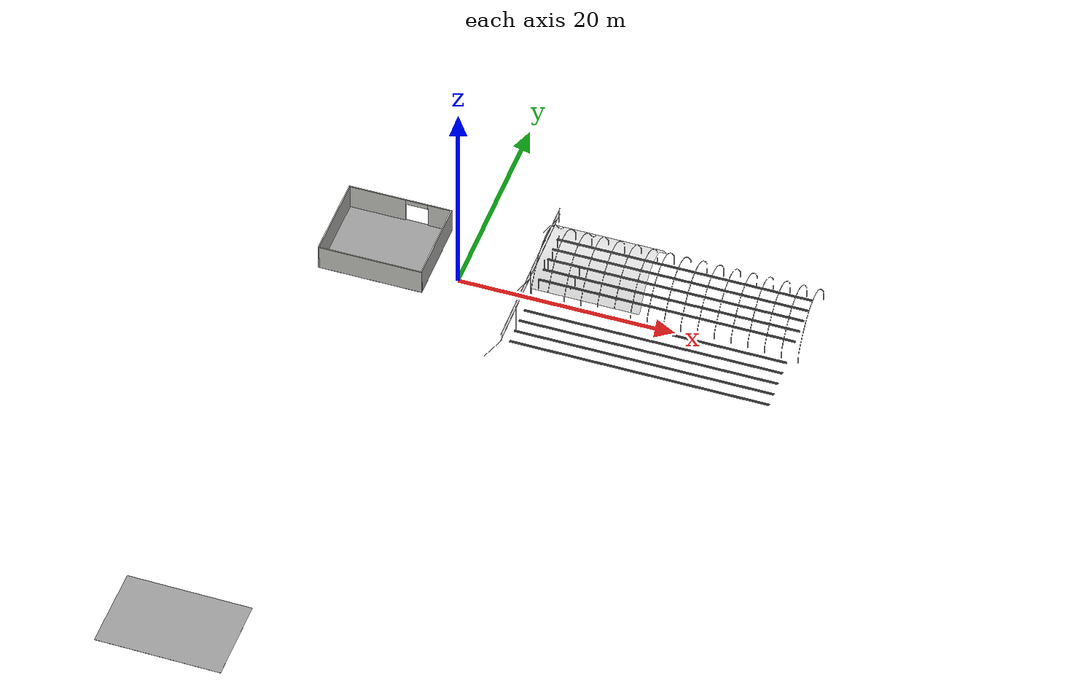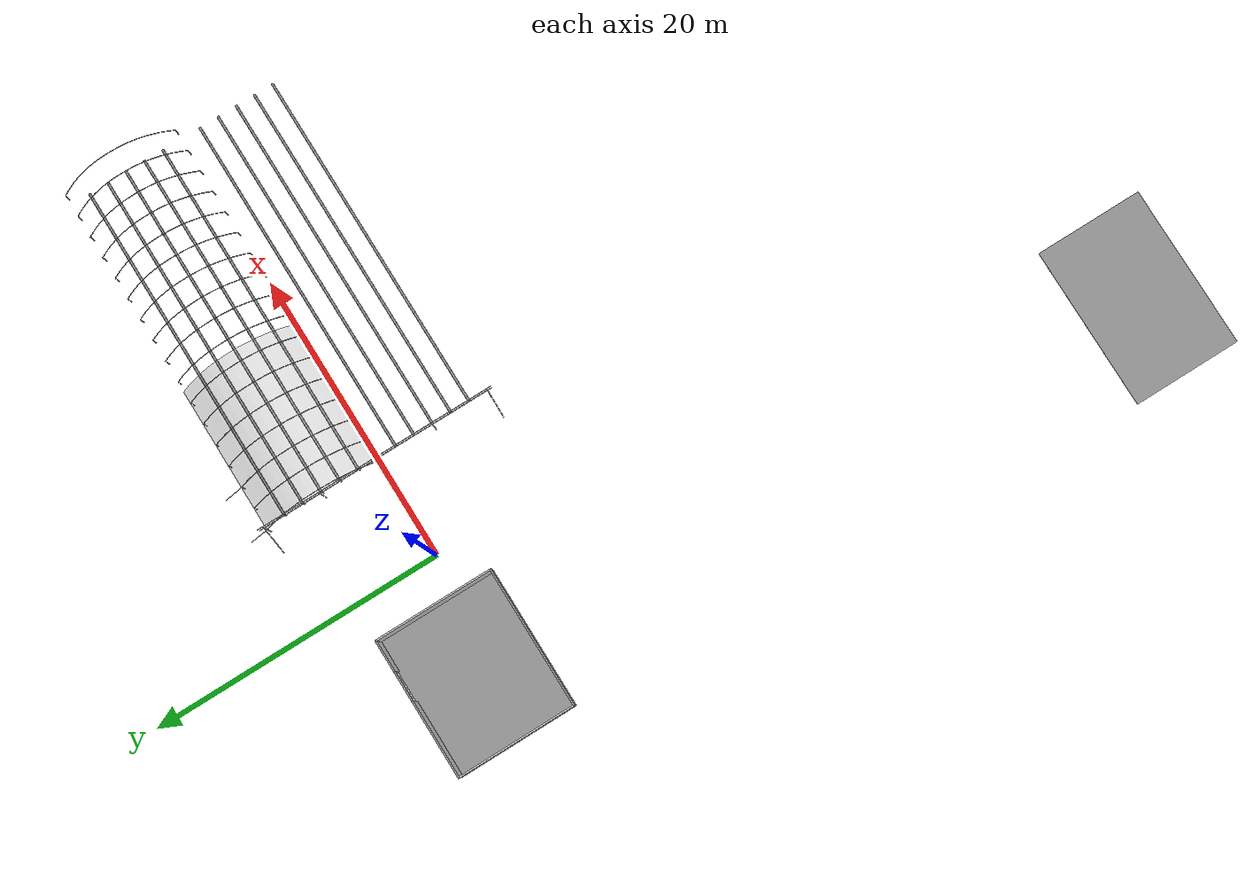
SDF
<sdf version="1.4">
 <world name="default">
  <model name="tray_0">
   <static>1</static>
   <link name="link_0">
    <collision name="collision"><geometry><box><size>23.620 0.15 0.005</size></box></geometry></collision>
    <visual name="visual">
     <geometry><box><size>23.620 0.15 0.005</size></box></geometry>
     <material>
      <script><uri>file://media/materials/scripts/gazebo.material</uri><name>Gazebo/Grey</name></script>
      <emissive>0 0 0 1</emissive>
      <shader type="vertex"><normal_map>__default__</normal_map></shader>
      <specular>0.01 0.01 0.01 1</specular>
      <lighting>1</lighting>
      <ambient>0.7 0.7 0.7 1</ambient>
      <diffuse>0.3 0.3 0.3 1</diffuse>
     </material>
    </visual>
    <pose>18.760 -6.640 1.14965 0.0 0.0 0.0</pose>
   </link>
  </model>
  <model name="tray_1">
   <static>1</static>
   <link name="link_0">
    <collision name="collision"><geometry><box><size>23.620 0.15 0.005</size></box></geometry></collision>
    <visual name="visual">
     <geometry><box><size>23.620 0.15 0.005</size></box></geometry>
     <material>
      <script><uri>file://media/materials/scripts/gazebo.material</uri><name>Gazebo/Grey</name></script>
      <emissive>0 0 0 1</emissive>
      <shader type="vertex"><normal_map>__default__</normal_map></shader>
      <specular>0.01 0.01 0.01 1</specular>
      <lighting>1</lighting>
      <ambient>0.7 0.7 0.7 1</ambient>
      <diffuse>0.3 0.3 0.3 1</diffuse>
     </material>
    </visual>
    <pose>18.760 -5.320 1.14965 0.0 0.0 0.0</pose>
   </link>
  </model>
  <model name="tray_2">
   <static>1</static>
   <link name="link_0">
    <collision name="collision"><geometry><box><size>23.620 0.15 0.005</size></box></geometry></collision>
    <visual name="visual">
     <geometry><box><size>23.620 0.15 0.005</size></box></geometry>
     <material>
      <script><uri>file://media/materials/scripts/gazebo.material</uri><name>Gazebo/Grey</name></script>
      <emissive>0 0 0 1</emissive>
      <shader type="vertex"><normal_map>__default__</normal_map></shader>
      <specular>0.01 0.01 0.01 1</specular>
      <lighting>1</lighting>
      <ambient>0.7 0.7 0.7 1</ambient>
      <diffuse>0.3 0.3 0.3 1</diffuse>
     </material>
    </visual>
    <pose>18.760 -4.000 1.14965 0.0 0.0 0.0</pose>
   </link>
  </model>
  <model name="tray_3">
   <static>1</static>
   <link name="link_0">
    <collision name="collision"><geometry><box><size>23.620 0.15 0.005</size></box></geometry></collision>
    <visual name="visual">
     <geometry><box><size>23.620 0.15 0.005</size></box></geometry>
     <material>
      <script><uri>file://media/materials/scripts/gazebo.material</uri><name>Gazebo/Grey</name></script>
      <emissive>0 0 0 1</emissive>
      <shader type="vertex"><normal_map>__default__</normal_map></shader>
      <specular>0.01 0.01 0.01 1</specular>
      <lighting>1</lighting>
      <ambient>0.7 0.7 0.7 1</ambient>
      <diffuse>0.3 0.3 0.3 1</diffuse>
     </material>
    </visual>
    <pose>18.760 -2.680 1.14965 0.0 0.0 0.0</pose>
   </link>
  </model>
  <model name="tray_4">
   <static>1</static>
   <link name="link_0">
    <collision name="collision"><geometry><box><size>23.620 0.15 0.005</size></box></geometry></collision>
    <visual name="visual">
     <geometry><box><size>23.620 0.15 0.005</size></box></geometry>
     <material>
      <script><uri>file://media/materials/scripts/gazebo.material</uri><name>Gazebo/Grey</name></script>
      <emissive>0 0 0 1</emissive>
      <shader type="vertex"><normal_map>__default__</normal_map></shader>
      <specular>0.01 0.01 0.01 1</specular>
      <lighting>1</lighting>
      <ambient>0.7 0.7 0.7 1</ambient>
      <diffuse>0.3 0.3 0.3 1</diffuse>
     </material>
    </visual>
    <pose>18.760 -1.360 1.14965 0.0 0.0 0.0</pose>
   </link>
  </model>
  <model name="tray_p2_0">
   <static>1</static>
   <link name="link_0">
    <collision name="collision"><geometry><box><size>23.62 0.085 0.005</size></box></geometry></collision>
    <visual name="visual">
     <geometry><box><size>23.62 0.085 0.005</size></box></geometry>
     <material>
      <script><uri>file://media/materials/scripts/gazebo.material</uri><name>Gazebo/Grey</name></script>
      <emissive>0 0 0 1</emissive>
      <shader type="vertex"><normal_map>__default__</normal_map></shader>
      <specular>0.01 0.01 0.01 1</specular>
      <lighting>1</lighting>
      <ambient>0.7 0.7 0.7 1</ambient>
      <diffuse>0.3 0.3 0.3 1</diffuse>
     </material>
    </visual>
    <pose>18.760 -6.715 1.19165 1.5707 0.0 0.0</pose>
   </link>
  </model>
  <model name="tray_p2_1">
   <static>1</static>
   <link name="link_0">
    <collision name="collision"><geometry><box><size>23.62 0.085 0.005</size></box></geometry></collision>
    <visual name="visual">
     <geometry><box><size>23.62 0.085 0.005</size></box></geometry>
     <material>
      <script><uri>file://media/materials/scripts/gazebo.material</uri><name>Gazebo/Grey</name></script>
      <emissive>0 0 0 1</emissive>
      <shader type="vertex"><normal_map>__default__</normal_map></shader>
      <specular>0.01 0.01 0.01 1</specular>
      <lighting>1</lighting>
      <ambient>0.7 0.7 0.7 1</ambient>
      <diffuse>0.3 0.3 0.3 1</diffuse>
     </material>
    </visual>
    <pose>18.760 -5.395 1.19165 1.5707 0.0 0.0</pose>
   </link>
  </model>
  <model name="tray_p2_2">
   <static>1</static>
   <link name="link_0">
    <collision name="collision"><geometry><box><size>23.62 0.085 0.005</size></box></geometry></collision>
    <visual name="visual">
     <geometry><box><size>23.62 0.085 0.005</size></box></geometry>
     <material>
      <script><uri>file://media/materials/scripts/gazebo.material</uri><name>Gazebo/Grey</name></script>
      <emissive>0 0 0 1</emissive>
      <shader type="vertex"><normal_map>__default__</normal_map></shader>
      <specular>0.01 0.01 0.01 1</specular>
      <lighting>1</lighting>
      <ambient>0.7 0.7 0.7 1</ambient>
      <diffuse>0.3 0.3 0.3 1</diffuse>
     </material>
    </visual>
    <pose>18.760 -4.075 1.19165 1.5707 0.0 0.0</pose>
   </link>
  </model>
  <model name="tray_p2_3">
   <static>1</static>
   <link name="link_0">
    <collision name="collision"><geometry><box><size>23.62 0.085 0.005</size></box></geometry></collision>
    <visual name="visual">
     <geometry><box><size>23.62 0.085 0.005</size></box></geometry>
     <material>
      <script><uri>file://media/materials/scripts/gazebo.material</uri><name>Gazebo/Grey</name></script>
      <emissive>0 0 0 1</emissive>
      <shader type="vertex"><normal_map>__default__</normal_map></shader>
      <specular>0.01 0.01 0.01 1</specular>
      <lighting>1</lighting>
      <ambient>0.7 0.7 0.7 1</ambient>
      <diffuse>0.3 0.3 0.3 1</diffuse>
     </material>
    </visual>
    <pose>18.760 -2.755 1.19165 1.5707 0.0 0.0</pose>
   </link>
  </model>
  <model name="tray_p2_4">
   <static>1</static>
   <link name="link_0">
    <collision name="collision"><geometry><box><size>23.62 0.085 0.005</size></box></geometry></collision>
    <visual name="visual">
     <geometry><box><size>23.62 0.085 0.005</size></box></geometry>
     <material>
      <script><uri>file://media/materials/scripts/gazebo.material</uri><name>Gazebo/Grey</name></script>
      <emissive>0 0 0 1</emissive>
      <shader type="vertex"><normal_map>__default__</normal_map></shader>
      <specular>0.01 0.01 0.01 1</specular>
      <lighting>1</lighting>
      <ambient>0.7 0.7 0.7 1</ambient>
      <diffuse>0.3 0.3 0.3 1</diffuse>
     </material>
    </visual>
    <pose>18.760 -1.435 1.19165 1.5707 0.0 0.0</pose>
   </link>
  </model>
  <model name="tray_p2_5">
   <static>1</static>
   <link name="link_0">
    <collision name="collision"><geometry><box><size>23.62 0.085 0.005</size></box></geometry></collision>
    <visual name="visual">
     <geometry><box><size>23.62 0.085 0.005</size></box></geometry>
     <material>
      <script><uri>file://media/materials/scripts/gazebo.material</uri><name>Gazebo/Grey</name></script>
      <emissive>0 0 0 1</emissive>
      <shader type="vertex"><normal_map>__default__</normal_map></shader>
      <specular>0.01 0.01 0.01 1</specular>
      <lighting>1</lighting>
      <ambient>0.7 0.7 0.7 1</ambient>
      <diffuse>0.3 0.3 0.3 1</diffuse>
     </material>
    </visual>
    <pose>18.760 -6.565 1.19165 1.5707 0.0 0.0</pose>
   </link>
  </model>
  <model name="tray_p2_6">
   <static>1</static>
   <link name="link_0">
    <collision name="collision"><geometry><box><size>23.62 0.085 0.005</size></box></geometry></collision>
    <visual name="visual">
     <geometry><box><size>23.62 0.085 0.005</size></box></geometry>
     <material>
      <script><uri>file://media/materials/scripts/gazebo.material</uri><name>Gazebo/Grey</name></script>
      <emissive>0 0 0 1</emissive>
      <shader type="vertex"><normal_map>__default__</normal_map></shader>
      <specular>0.01 0.01 0.01 1</specular>
      <lighting>1</lighting>
      <ambient>0.7 0.7 0.7 1</ambient>
      <diffuse>0.3 0.3 0.3 1</diffuse>
     </material>
    </visual>
    <pose>18.760 -5.245 1.19165 1.5707 0.0 0.0</pose>
   </link>
  </model>
  <model name="tray_p2_7">
   <static>1</static>
   <link name="link_0">
    <collision name="collision"><geometry><box><size>23.62 0.085 0.005</size></box></geometry></collision>
    <visual name="visual">
     <geometry><box><size>23.62 0.085 0.005</size></box></geometry>
     <material>
      <script><uri>file://media/materials/scripts/gazebo.material</uri><name>Gazebo/Grey</name></script>
      <emissive>0 0 0 1</emissive>
      <shader type="vertex"><normal_map>__default__</normal_map></shader>
      <specular>0.01 0.01 0.01 1</specular>
      <lighting>1</lighting>
      <ambient>0.7 0.7 0.7 1</ambient>
      <diffuse>0.3 0.3 0.3 1</diffuse>
     </material>
    </visual>
    <pose>18.760 -3.925 1.19165 1.5707 0.0 0.0</pose>
   </link>
  </model>
  <model name="tray_p2_8">
   <static>1</static>
   <link name="link_0">
    <collision name="collision"><geometry><box><size>23.62 0.085 0.005</size></box></geometry></collision>
    <visual name="visual">
     <geometry><box><size>23.62 0.085 0.005</size></box></geometry>
     <material>
      <script><uri>file://media/materials/scripts/gazebo.material</uri><name>Gazebo/Grey</name></script>
      <emissive>0 0 0 1</emissive>
      <shader type="vertex"><normal_map>__default__</normal_map></shader>
      <specular>0.01 0.01 0.01 1</specular>
      <lighting>1</lighting>
      <ambient>0.7 0.7 0.7 1</ambient>
      <diffuse>0.3 0.3 0.3 1</diffuse>
     </material>
    </visual>
    <pose>18.760 -2.605 1.19165 1.5707 0.0 0.0</pose>
   </link>
  </model>
  <model name="tray_p2_9">
   <static>1</static>
   <link name="link_0">
    <collision name="collision"><geometry><box><size>23.62 0.085 0.005</size></box></geometry></collision>
    <visual name="visual">
     <geometry><box><size>23.62 0.085 0.005</size></box></geometry>
     <material>
      <script><uri>file://media/materials/scripts/gazebo.material</uri><name>Gazebo/Grey</name></script>
      <emissive>0 0 0 1</emissive>
      <shader type="vertex"><normal_map>__default__</normal_map></shader>
      <specular>0.01 0.01 0.01 1</specular>
      <lighting>1</lighting>
      <ambient>0.7 0.7 0.7 1</ambient>
      <diffuse>0.3 0.3 0.3 1</diffuse>
     </material>
    </visual>
    <pose>18.760 -1.285 1.19165 1.5707 0.0 0.0</pose>
   </link>
  </model>
  <model name="pole_45">
   <static>1</static>
   <pose>7.000 1.320 0.575 0.0 0.0 0.0</pose>
   <link name="link">
    <collision name="collision">
     <geometry><cylinder><length>1.15</length><radius>0.025</radius></cylinder></geometry>
    </collision>
    <visual name="visual">
     <geometry><cylinder><length>1.15</length><radius>0.025</radius></cylinder></geometry>
     <material>
      <script><uri>file://media/materials/scripts/gazebo.material</uri><name>Gazebo/Chrome</name></script>
      <shader type="vertex"><normal_map>__default__</normal_map></shader>
      <emissive>0.1 0.1 0.1 1</emissive>
      <specular>0.01 0.01 0.01 1</specular>
      <ambient>0.5 0.5 0.5 1</ambient>
      <diffuse>0.05 0.05 0.05 1</diffuse>
     </material>
    </visual>
   </link>
  </model>
  <model name="pole_46">
   <static>1</static>
   <pose>7.000 2.640 0.575 0.0 0.0 0.0</pose>
   <link name="link">
    <collision name="collision">
     <geometry><cylinder><length>1.15</length><radius>0.025</radius></cylinder></geometry>
    </collision>
    <visual name="visual">
     <geometry><cylinder><length>1.15</length><radius>0.025</radius></cylinder></geometry>
     <material>
      <script><uri>file://media/materials/scripts/gazebo.material</uri><name>Gazebo/Chrome</name></script>
      <shader type="vertex"><normal_map>__default__</normal_map></shader>
      <emissive>0.1 0.1 0.1 1</emissive>
      <specular>0.01 0.01 0.01 1</specular>
      <ambient>0.5 0.5 0.5 1</ambient>
      <diffuse>0.05 0.05 0.05 1</diffuse>
     </material>
    </visual>
   </link>
  </model>
  <model name="pole_47">
   <static>1</static>
   <pose>7.000 3.960 0.575 0.0 0.0 0.0</pose>
   <link name="link">
    <collision name="collision">
     <geometry><cylinder><length>1.15</length><radius>0.025</radius></cylinder></geometry>
    </collision>
    <visual name="visual">
     <geometry><cylinder><length>1.15</length><radius>0.025</radius></cylinder></geometry>
     <material>
      <script><uri>file://media/materials/scripts/gazebo.material</uri><name>Gazebo/Chrome</name></script>
      <shader type="vertex"><normal_map>__default__</normal_map></shader>
      <emissive>0.1 0.1 0.1 1</emissive>
      <specular>0.01 0.01 0.01 1</specular>
      <ambient>0.5 0.5 0.5 1</ambient>
      <diffuse>0.05 0.05 0.05 1</diffuse>
     </material>
    </visual>
   </link>
  </model>
  <model name="pole_48">
   <static>1</static>
   <pose>7.000 5.280 0.575 0.0 0.0 0.0</pose>
   <link name="link">
    <collision name="collision">
     <geometry><cylinder><length>1.15</length><radius>0.025</radius></cylinder></geometry>
    </collision>
    <visual name="visual">
     <geometry><cylinder><length>1.15</length><radius>0.025</radius></cylinder></geometry>
     <material>
      <script><uri>file://media/materials/scripts/gazebo.material</uri><name>Gazebo/Chrome</name></script>
      <shader type="vertex"><normal_map>__default__</normal_map></shader>
      <emissive>0.1 0.1 0.1 1</emissive>
      <specular>0.01 0.01 0.01 1</specular>
      <ambient>0.5 0.5 0.5 1</ambient>
      <diffuse>0.05 0.05 0.05 1</diffuse>
     </material>
    </visual>
   </link>
  </model>
  <model name="pole_49">
   <static>1</static>
   <pose>7.000 6.600 0.575 0.0 0.0 0.0</pose>
   <link name="link">
    <collision name="collision">
     <geometry><cylinder><length>1.15</length><radius>0.025</radius></cylinder></geometry>
    </collision>
    <visual name="visual">
     <geometry><cylinder><length>1.15</length><radius>0.025</radius></cylinder></geometry>
     <material>
      <script><uri>file://media/materials/scripts/gazebo.material</uri><name>Gazebo/Chrome</name></script>
      <shader type="vertex"><normal_map>__default__</normal_map></shader>
      <emissive>0.1 0.1 0.1 1</emissive>
      <specular>0.01 0.01 0.01 1</specular>
      <ambient>0.5 0.5 0.5 1</ambient>
      <diffuse>0.05 0.05 0.05 1</diffuse>
     </material>
    </visual>
   </link>
  </model>
  <model name="pole_50">
   <static>1</static>
   <pose>9.940 1.320 0.575 0.0 0.0 0.0</pose>
   <link name="link">
    <collision name="collision">
     <geometry><cylinder><length>1.15</length><radius>0.025</radius></cylinder></geometry>
    </collision>
    <visual name="visual">
     <geometry><cylinder><length>1.15</length><radius>0.025</radius></cylinder></geometry>
     <material>
      <script><uri>file://media/materials/scripts/gazebo.material</uri><name>Gazebo/Chrome</name></script>
      <shader type="vertex"><normal_map>__default__</normal_map></shader>
      <emissive>0.1 0.1 0.1 1</emissive>
      <specular>0.01 0.01 0.01 1</specular>
      <ambient>0.5 0.5 0.5 1</ambient>
      <diffuse>0.05 0.05 0.05 1</diffuse>
     </material>
    </visual>
   </link>
  </model>
  <model name="pole_51">
   <static>1</static>
   <pose>9.940 2.640 0.575 0.0 0.0 0.0</pose>
   <link name="link">
    <collision name="collision">
     <geometry><cylinder><length>1.15</length><radius>0.025</radius></cylinder></geometry>
    </collision>
    <visual name="visual">
     <geometry><cylinder><length>1.15</length><radius>0.025</radius></cylinder></geometry>
     <material>
      <script><uri>file://media/materials/scripts/gazebo.material</uri><name>Gazebo/Chrome</name></script>
      <shader type="vertex"><normal_map>__default__</normal_map></shader>
      <emissive>0.1 0.1 0.1 1</emissive>
      <specular>0.01 0.01 0.01 1</specular>
      <ambient>0.5 0.5 0.5 1</ambient>
      <diffuse>0.05 0.05 0.05 1</diffuse>
     </material>
    </visual>
   </link>
  </model>
  <model name="pole_52">
   <static>1</static>
   <pose>9.940 3.960 0.575 0.0 0.0 0.0</pose>
   <link name="link">
    <collision name="collision">
     <geometry><cylinder><length>1.15</length><radius>0.025</radius></cylinder></geometry>
    </collision>
    <visual name="visual">
     <geometry><cylinder><length>1.15</length><radius>0.025</radius></cylinder></geometry>
     <material>
      <script><uri>file://media/materials/scripts/gazebo.material</uri><name>Gazebo/Chrome</name></script>
      <shader type="vertex"><normal_map>__default__</normal_map></shader>
      <emissive>0.1 0.1 0.1 1</emissive>
      <specular>0.01 0.01 0.01 1</specular>
      <ambient>0.5 0.5 0.5 1</ambient>
      <diffuse>0.05 0.05 0.05 1</diffuse>
     </material>
    </visual>
   </link>
  </model>
  <model name="tray_5">
   <static>1</static>
   <link name="link_0">
    <collision name="collision"><geometry><box><size>23.620 0.15 0.005</size></box></geometry></collision>
    <visual name="visual">
     <geometry><box><size>23.620 0.15 0.005</size></box></geometry>
     <material>
      <script><uri>file://media/materials/scripts/gazebo.material</uri><name>Gazebo/Grey</name></script>
      <emissive>0 0 0 1</emissive>
      <shader type="vertex"><normal_map>__default__</normal_map></shader>
      <specular>0.01 0.01 0.01 1</specular>
      <lighting>1</lighting>
      <ambient>0.7 0.7 0.7 1</ambient>
      <diffuse>0.3 0.3 0.3 1</diffuse>
     </material>
    </visual>
    <pose>18.760 1.320 1.14965 0.0 0.0 0.0</pose>
   </link>
  </model>
  <model name="tray_6">
   <static>1</static>
   <link name="link_0">
    <collision name="collision"><geometry><box><size>23.620 0.15 0.005</size></box></geometry></collision>
    <visual name="visual">
     <geometry><box><size>23.620 0.15 0.005</size></box></geometry>
     <material>
      <script><uri>file://media/materials/scripts/gazebo.material</uri><name>Gazebo/Grey</name></script>
      <emissive>0 0 0 1</emissive>
      <shader type="vertex"><normal_map>__default__</normal_map></shader>
      <specular>0.01 0.01 0.01 1</specular>
      <lighting>1</lighting>
      <ambient>0.7 0.7 0.7 1</ambient>
      <diffuse>0.3 0.3 0.3 1</diffuse>
     </material>
    </visual>
    <pose>18.760 2.640 1.14965 0.0 0.0 0.0</pose>
   </link>
  </model>
  <model name="tray_7">
   <static>1</static>
   <link name="link_0">
    <collision name="collision"><geometry><box><size>23.620 0.15 0.005</size></box></geometry></collision>
    <visual name="visual">
     <geometry><box><size>23.620 0.15 0.005</size></box></geometry>
     <material>
      <script><uri>file://media/materials/scripts/gazebo.material</uri><name>Gazebo/Grey</name></script>
      <emissive>0 0 0 1</emissive>
      <shader type="vertex"><normal_map>__default__</normal_map></shader>
      <specular>0.01 0.01 0.01 1</specular>
      <lighting>1</lighting>
      <ambient>0.7 0.7 0.7 1</ambient>
      <diffuse>0.3 0.3 0.3 1</diffuse>
     </material>
    </visual>
    <pose>18.760 3.960 1.14965 0.0 0.0 0.0</pose>
   </link>
  </model>
  <model name="tray_8">
   <static>1</static>
   <link name="link_0">
    <collision name="collision"><geometry><box><size>23.620 0.15 0.005</size></box></geometry></collision>
    <visual name="visual">
     <geometry><box><size>23.620 0.15 0.005</size></box></geometry>
     <material>
      <script><uri>file://media/materials/scripts/gazebo.material</uri><name>Gazebo/Grey</name></script>
      <emissive>0 0 0 1</emissive>
      <shader type="vertex"><normal_map>__default__</normal_map></shader>
      <specular>0.01 0.01 0.01 1</specular>
      <lighting>1</lighting>
      <ambient>0.7 0.7 0.7 1</ambient>
      <diffuse>0.3 0.3 0.3 1</diffuse>
     </material>
    </visual>
    <pose>18.760 5.280 1.14965 0.0 0.0 0.0</pose>
   </link>
  </model>
  <model name="tray_9">
   <static>1</static>
   <link name="link_0">
    <collision name="collision"><geometry><box><size>23.620 0.15 0.005</size></box></geometry></collision>
    <visual name="visual">
     <geometry><box><size>23.620 0.15 0.005</size></box></geometry>
     <material>
      <script><uri>file://media/materials/scripts/gazebo.material</uri><name>Gazebo/Grey</name></script>
      <emissive>0 0 0 1</emissive>
      <shader type="vertex"><normal_map>__default__</normal_map></shader>
      <specular>0.01 0.01 0.01 1</specular>
      <lighting>1</lighting>
      <ambient>0.7 0.7 0.7 1</ambient>
      <diffuse>0.3 0.3 0.3 1</diffuse>
     </material>
    </visual>
    <pose>18.760 6.600 1.14965 0.0 0.0 0.0</pose>
   </link>
  </model>
  <model name="tray_p2_10">
   <static>1</static>
   <link name="link_0">
    <collision name="collision"><geometry><box><size>23.62 0.085 0.005</size></box></geometry></collision>
    <visual name="visual">
     <geometry><box><size>23.62 0.085 0.005</size></box></geometry>
     <material>
      <script><uri>file://media/materials/scripts/gazebo.material</uri><name>Gazebo/Grey</name></script>
      <emissive>0 0 0 1</emissive>
      <shader type="vertex"><normal_map>__default__</normal_map></shader>
      <specular>0.01 0.01 0.01 1</specular>
      <lighting>1</lighting>
      <ambient>0.7 0.7 0.7 1</ambient>
      <diffuse>0.3 0.3 0.3 1</diffuse>
     </material>
    </visual>
    <pose>18.760 1.245 1.19165 1.5707 0.0 0.0</pose>
   </link>
  </model>
  <model name="tray_p2_11">
   <static>1</static>
   <link name="link_0">
    <collision name="collision"><geometry><box><size>23.62 0.085 0.005</size></box></geometry></collision>
    <visual name="visual">
     <geometry><box><size>23.62 0.085 0.005</size></box></geometry>
     <material>
      <script><uri>file://media/materials/scripts/gazebo.material</uri><name>Gazebo/Grey</name></script>
      <emissive>0 0 0 1</emissive>
      <shader type="vertex"><normal_map>__default__</normal_map></shader>
      <specular>0.01 0.01 0.01 1</specular>
      <lighting>1</lighting>
      <ambient>0.7 0.7 0.7 1</ambient>
      <diffuse>0.3 0.3 0.3 1</diffuse>
     </material>
    </visual>
    <pose>18.760 2.565 1.19165 1.5707 0.0 0.0</pose>
   </link>
  </model>
  <model name="tray_p2_12">
   <static>1</static>
   <link name="link_0">
    <collision name="collision"><geometry><box><size>23.62 0.085 0.005</size></box></geometry></collision>
    <visual name="visual">
     <geometry><box><size>23.62 0.085 0.005</size></box></geometry>
     <material>
      <script><uri>file://media/materials/scripts/gazebo.material</uri><name>Gazebo/Grey</name></script>
      <emissive>0 0 0 1</emissive>
      <shader type="vertex"><normal_map>__default__</normal_map></shader>
      <specular>0.01 0.01 0.01 1</specular>
      <lighting>1</lighting>
      <ambient>0.7 0.7 0.7 1</ambient>
      <diffuse>0.3 0.3 0.3 1</diffuse>
     </material>
    </visual>
    <pose>18.760 3.885 1.19165 1.5707 0.0 0.0</pose>
   </link>
  </model>
  <model name="tray_p2_13">
   <static>1</static>
   <link name="link_0">
    <collision name="collision"><geometry><box><size>23.62 0.085 0.005</size></box></geometry></collision>
    <visual name="visual">
     <geometry><box><size>23.62 0.085 0.005</size></box></geometry>
     <material>
      <script><uri>file://media/materials/scripts/gazebo.material</uri><name>Gazebo/Grey</name></script>
      <emissive>0 0 0 1</emissive>
      <shader type="vertex"><normal_map>__default__</normal_map></shader>
      <specular>0.01 0.01 0.01 1</specular>
      <lighting>1</lighting>
      <ambient>0.7 0.7 0.7 1</ambient>
      <diffuse>0.3 0.3 0.3 1</diffuse>
     </material>
    </visual>
    <pose>18.760 5.205 1.19165 1.5707 0.0 0.0</pose>
   </link>
  </model>
  <model name="tray_p2_14">
   <static>1</static>
   <link name="link_0">
    <collision name="collision"><geometry><box><size>23.62 0.085 0.005</size></box></geometry></collision>
    <visual name="visual">
     <geometry><box><size>23.62 0.085 0.005</size></box></geometry>
     <material>
      <script><uri>file://media/materials/scripts/gazebo.material</uri><name>Gazebo/Grey</name></script>
      <emissive>0 0 0 1</emissive>
      <shader type="vertex"><normal_map>__default__</normal_map></shader>
      <specular>0.01 0.01 0.01 1</specular>
      <lighting>1</lighting>
      <ambient>0.7 0.7 0.7 1</ambient>
      <diffuse>0.3 0.3 0.3 1</diffuse>
     </material>
    </visual>
    <pose>18.760 6.525 1.19165 1.5707 0.0 0.0</pose>
   </link>
  </model>
  <model name="tray_p2_15">
   <static>1</static>
   <link name="link_0">
    <collision name="collision"><geometry><box><size>23.62 0.085 0.005</size></box></geometry></collision>
    <visual name="visual">
     <geometry><box><size>23.62 0.085 0.005</size></box></geometry>
     <material>
      <script><uri>file://media/materials/scripts/gazebo.material</uri><name>Gazebo/Grey</name></script>
      <emissive>0 0 0 1</emissive>
      <shader type="vertex"><normal_map>__default__</normal_map></shader>
      <specular>0.01 0.01 0.01 1</specular>
      <lighting>1</lighting>
      <ambient>0.7 0.7 0.7 1</ambient>
      <diffuse>0.3 0.3 0.3 1</diffuse>
     </material>
    </visual>
    <pose>18.760 1.395 1.19165 1.5707 0.0 0.0</pose>
   </link>
  </model>
  <model name="tray_p2_16">
   <static>1</static>
   <link name="link_0">
    <collision name="collision"><geometry><box><size>23.62 0.085 0.005</size></box></geometry></collision>
    <visual name="visual">
     <geometry><box><size>23.62 0.085 0.005</size></box></geometry>
     <material>
      <script><uri>file://media/materials/scripts/gazebo.material</uri><name>Gazebo/Grey</name></script>
      <emissive>0 0 0 1</emissive>
      <shader type="vertex"><normal_map>__default__</normal_map></shader>
      <specular>0.01 0.01 0.01 1</specular>
      <lighting>1</lighting>
      <ambient>0.7 0.7 0.7 1</ambient>
      <diffuse>0.3 0.3 0.3 1</diffuse>
     </material>
    </visual>
    <pose>18.760 2.715 1.19165 1.5707 0.0 0.0</pose>
   </link>
  </model>
  <model name="tray_p2_17">
   <static>1</static>
   <link name="link_0">
    <collision name="collision"><geometry><box><size>23.62 0.085 0.005</size></box></geometry></collision>
    <visual name="visual">
     <geometry><box><size>23.62 0.085 0.005</size></box></geometry>
     <material>
      <script><uri>file://media/materials/scripts/gazebo.material</uri><name>Gazebo/Grey</name></script>
      <emissive>0 0 0 1</emissive>
      <shader type="vertex"><normal_map>__default__</normal_map></shader>
      <specular>0.01 0.01 0.01 1</specular>
      <lighting>1</lighting>
      <ambient>0.7 0.7 0.7 1</ambient>
      <diffuse>0.3 0.3 0.3 1</diffuse>
     </material>
    </visual>
    <pose>18.760 4.035 1.19165 1.5707 0.0 0.0</pose>
   </link>
  </model>
  <model name="tray_p2_18">
   <static>1</static>
   <link name="link_0">
    <collision name="collision"><geometry><box><size>23.62 0.085 0.005</size></box></geometry></collision>
    <visual name="visual">
     <geometry><box><size>23.62 0.085 0.005</size></box></geometry>
     <material>
      <script><uri>file://media/materials/scripts/gazebo.material</uri><name>Gazebo/Grey</name></script>
      <emissive>0 0 0 1</emissive>
      <shader type="vertex"><normal_map>__default__</normal_map></shader>
      <specular>0.01 0.01 0.01 1</specular>
      <lighting>1</lighting>
      <ambient>0.7 0.7 0.7 1</ambient>
      <diffuse>0.3 0.3 0.3 1</diffuse>
     </material>
    </visual>
    <pose>18.760 5.355 1.19165 1.5707 0.0 0.0</pose>
   </link>
  </model>
  <model name="tray_p2_19">
   <static>1</static>
   <link name="link_0">
    <collision name="collision"><geometry><box><size>23.62 0.085 0.005</size></box></geometry></collision>
    <visual name="visual">
     <geometry><box><size>23.62 0.085 0.005</size></box></geometry>
     <material>
      <script><uri>file://media/materials/scripts/gazebo.material</uri><name>Gazebo/Grey</name></script>
      <emissive>0 0 0 1</emissive>
      <shader type="vertex"><normal_map>__default__</normal_map></shader>
      <specular>0.01 0.01 0.01 1</specular>
      <lighting>1</lighting>
      <ambient>0.7 0.7 0.7 1</ambient>
      <diffuse>0.3 0.3 0.3 1</diffuse>
     </material>
    </visual>
    <pose>18.760 6.675 1.19165 1.5707 0.0 0.0</pose>
   </link>
  </model>
  <model name="fixed_arches_1">
   <static>1</static>
   <pose>3.645 0.000 0.0 1.5707 0.0 1.5707</pose>
   <link name="link">
    <collision name="collision">
     <geometry><mesh><uri>model://dummy_arch_17/dummy_arch_17.stl</uri></mesh></geometry>
    </collision>
    <visual name="visual">
     <geometry><mesh><uri>model://dummy_arch_17/dummy_arch_17.stl</uri></mesh></geometry>
     <material>
      <script><uri>file://media/materials/scripts/gazebo.material</uri><name>Gazebo/Grey</name></script>
      <shader type="vertex"><normal_map>__default__</normal_map></shader>
      <emissive>0 0 0 1</emissive>
      <specular>0.01 0.01 0.01 1</specular>
      <ambient>0.75 0.75 0.75 1</ambient>
      <diffuse>0.07 0.07 0.07 1</diffuse>
     </material>
    </visual>
   </link>
  </model>
  <model name="canopy10m_2">
   <static>1</static>
   <pose>6.720 0.000 -0.00 1.5707 0.0 1.5707</pose>
   <link name="link">
    <collision name="collision">
     <geometry><mesh><uri>model://canopy10m/canopy10m.stl</uri></mesh></geometry>
    </collision>
    <visual name="visual">
     <geometry><mesh><uri>model://canopy10m/canopy10m.stl</uri></mesh></geometry>
     <transparency>0.65</transparency>
    </visual>
   </link>
  </model>
  <model name="strut_9">
   <static>1</static>
   <pose>6.740 8.620 0.536 0.896 0.0 0.0</pose>
   <link name="link">
    <collision name="collision">
     <geometry><cylinder><length>1.76</length><radius>0.02</radius></cylinder></geometry>
    </collision>
    <visual name="visual">
     <geometry><cylinder><length>1.76</length><radius>0.02</radius></cylinder></geometry>
     <material>
      <script><uri>file://media/materials/scripts/gazebo.material</uri><name>Gazebo/Chrome</name></script>
      <shader type="vertex"><normal_map>__default__</normal_map></shader>
      <emissive>0.1 0.1 0.1 1</emissive>
      <specular>0.01 0.01 0.01 1</specular>
      <ambient>0.5 0.5 0.5 1</ambient>
      <diffuse>0.05 0.05 0.05 1</diffuse>
     </material>
    </visual>
   </link>
  </model>
  <model name="strut_10">
   <static>1</static>
   <pose>9.800 8.620 0.536 0.896 0.0 0.0</pose>
   <link name="link">
    <collision name="collision">
     <geometry><cylinder><length>1.76</length><radius>0.02</radius></cylinder></geometry>
    </collision>
    <visual name="visual">
     <geometry><cylinder><length>1.76</length><radius>0.02</radius></cylinder></geometry>
     <material>
      <script><uri>file://media/materials/scripts/gazebo.material</uri><name>Gazebo/Chrome</name></script>
      <shader type="vertex"><normal_map>__default__</normal_map></shader>
      <emissive>0.1 0.1 0.1 1</emissive>
      <specular>0.01 0.01 0.01 1</specular>
      <ambient>0.5 0.5 0.5 1</ambient>
      <diffuse>0.05 0.05 0.05 1</diffuse>
     </material>
    </visual>
   </link>
  </model>
  <model name="frontage_0">
   <static>1</static>
   <link name="link_1">
    <collision name="collision">
     <geometry><cylinder><length>3.5</length><radius>0.02</radius></cylinder></geometry>
    </collision>
    <visual name="visual">
     <geometry><cylinder><length>3.5</length><radius>0.02</radius></cylinder></geometry>
     <material>
      <script><uri>file://media/materials/scripts/gazebo.material</uri><name>Gazebo/Chrome</name></script>
      <shader type="vertex"><normal_map>__default__</normal_map></shader>
      <emissive>0.1 0.1 0.1 1</emissive>
      <specular>0.01 0.01 0.01 1</specular>
      <ambient>0.5 0.5 0.5 1</ambient>
      <diffuse>0.05 0.05 0.05 1</diffuse>
     </material>
    </visual>
    <pose>6.68 -7.94 1.7 0.0 0.0 0.0</pose>
   </link>
   <link name="link_2">
    <collision name="collision">
     <geometry><cylinder><length>3.5</length><radius>0.02</radius></cylinder></geometry>
    </collision>
    <visual name="visual">
     <geometry><cylinder><length>3.5</length><radius>0.02</radius></cylinder></geometry>
     <material>
      <script><uri>file://media/materials/scripts/gazebo.material</uri><name>Gazebo/Chrome</name></script>
      <shader type="vertex"><normal_map>__default__</normal_map></shader>
      <emissive>0.1 0.1 0.1 1</emissive>
      <specular>0.01 0.01 0.01 1</specular>
      <ambient>0.5 0.5 0.5 1</ambient>
      <diffuse>0.05 0.05 0.05 1</diffuse>
     </material>
    </visual>
    <pose>6.68 0 1.7 0.0 0.0 0.0</pose>
   </link>
   <link name="link_3">
    <collision name="collision">
     <geometry><cylinder><length>3.5</length><radius>0.02</radius></cylinder></geometry>
    </collision>
    <visual name="visual">
     <geometry><cylinder><length>3.5</length><radius>0.02</radius></cylinder></geometry>
     <material>
      <script><uri>file://media/materials/scripts/gazebo.material</uri><name>Gazebo/Chrome</name></script>
      <shader type="vertex"><normal_map>__default__</normal_map></shader>
      <emissive>0.1 0.1 0.1 1</emissive>
      <specular>0.01 0.01 0.01 1</specular>
      <ambient>0.5 0.5 0.5 1</ambient>
      <diffuse>0.05 0.05 0.05 1</diffuse>
     </material>
    </visual>
    <pose>6.68 7.93 1.7 0.0 0.0 0.0</pose>
   </link>
   <link name="link_10">
    <collision name="collision">
     <geometry><cylinder><length>3.5</length><radius>0.02</radius></cylinder></geometry>
    </collision>
    <visual name="visual">
     <geometry><cylinder><length>3.5</length><radius>0.02</radius></cylinder></geometry>
     <material>
      <script><uri>file://media/materials/scripts/gazebo.material</uri><name>Gazebo/Chrome</name></script>
      <shader type="vertex"><normal_map>__default__</normal_map></shader>
      <emissive>0.1 0.1 0.1 1</emissive>
      <specular>0.01 0.01 0.01 1</specular>
      <ambient>0.5 0.5 0.5 1</ambient>
      <diffuse>0.05 0.05 0.05 1</diffuse>
     </material>
    </visual>
    <pose>6.68 -4 1.7 0.0 0.0 0.0</pose>
   </link>
   <link name="link_11">
    <collision name="collision">
     <geometry><cylinder><length>3.5</length><radius>0.02</radius></cylinder></geometry>
    </collision>
    <visual name="visual">
     <geometry><cylinder><length>3.5</length><radius>0.02</radius></cylinder></geometry>
     <material>
      <script><uri>file://media/materials/scripts/gazebo.material</uri><name>Gazebo/Chrome</name></script>
      <shader type="vertex"><normal_map>__default__</normal_map></shader>
      <emissive>0.1 0.1 0.1 1</emissive>
      <specular>0.01 0.01 0.01 1</specular>
      <ambient>0.5 0.5 0.5 1</ambient>
      <diffuse>0.05 0.05 0.05 1</diffuse>
     </material>
    </visual>
    <pose>6.68 3.96 1.7 0.0 0.0 0.0</pose>
   </link>
   <link name="link_4">
    <collision name="collision">
     <geometry><cylinder><length>16.5</length><radius>0.02</radius></cylinder></geometry>
    </collision>
    <visual name="visual">
     <geometry><cylinder><length>16.5</length><radius>0.02</radius></cylinder></geometry>
     <material>
      <script><uri>file://media/materials/scripts/gazebo.material</uri><name>Gazebo/Chrome</name></script>
      <shader type="vertex"><normal_map>__default__</normal_map></shader>
      <emissive>0.1 0.1 0.1 1</emissive>
      <specular>0.01 0.01 0.01 1</specular>
      <ambient>0.5 0.5 0.5 1</ambient>
      <diffuse>0.05 0.05 0.05 1</diffuse>
     </material>
    </visual>
    <pose>6.68 0 2.7 1.5707 0.0 0.0</pose>
   </link>
   <link name="link_5">
    <collision name="collision">
     <geometry><cylinder><length>16.5</length><radius>0.02</radius></cylinder></geometry>
    </collision>
    <visual name="visual">
     <geometry><cylinder><length>16.5</length><radius>0.02</radius></cylinder></geometry>
     <material>
      <script><uri>file://media/materials/scripts/gazebo.material</uri><name>Gazebo/Chrome</name></script>
      <shader type="vertex"><normal_map>__default__</normal_map></shader>
      <emissive>0.1 0.1 0.1 1</emissive>
      <specular>0.01 0.01 0.01 1</specular>
      <ambient>0.5 0.5 0.5 1</ambient>
      <diffuse>0.05 0.05 0.05 1</diffuse>
     </material>
    </visual>
    <pose>6.68 0 3.45 1.5707 0.0 0.0</pose>
   </link>
   <link name="link_6">
    <collision name="collision">
     <geometry><cylinder><length>2.93</length><radius>0.02</radius></cylinder></geometry>
    </collision>
    <visual name="visual">
     <geometry><cylinder><length>2.93</length><radius>0.02</radius></cylinder></geometry>
     <material>
      <script><uri>file://media/materials/scripts/gazebo.material</uri><name>Gazebo/Chrome</name></script>
      <shader type="vertex"><normal_map>__default__</normal_map></shader>
      <emissive>0.1 0.1 0.1 1</emissive>
      <specular>0.01 0.01 0.01 1</specular>
      <ambient>0.5 0.5 0.5 1</ambient>
      <diffuse>0.05 0.05 0.05 1</diffuse>
     </material>
    </visual>
    <pose>5.89 -7.94 1.225 0 0.565 0.0</pose>
   </link>
   <link name="link_7">
    <collision name="collision">
     <geometry><cylinder><length>2.93</length><radius>0.02</radius></cylinder></geometry>
    </collision>
    <visual name="visual">
     <geometry><cylinder><length>2.93</length><radius>0.02</radius></cylinder></geometry>
     <material>
      <script><uri>file://media/materials/scripts/gazebo.material</uri><name>Gazebo/Chrome</name></script>
      <shader type="vertex"><normal_map>__default__</normal_map></shader>
      <emissive>0.1 0.1 0.1 1</emissive>
      <specular>0.01 0.01 0.01 1</specular>
      <ambient>0.5 0.5 0.5 1</ambient>
      <diffuse>0.05 0.05 0.05 1</diffuse>
     </material>
    </visual>
    <pose>5.89 0 1.225 0 0.565 0.0</pose>
   </link>
   <link name="link_8">
    <collision name="collision">
     <geometry><cylinder><length>2.93</length><radius>0.02</radius></cylinder></geometry>
    </collision>
    <visual name="visual">
     <geometry><cylinder><length>2.93</length><radius>0.02</radius></cylinder></geometry>
     <material>
      <script><uri>file://media/materials/scripts/gazebo.material</uri><name>Gazebo/Chrome</name></script>
      <shader type="vertex"><normal_map>__default__</normal_map></shader>
      <emissive>0.1 0.1 0.1 1</emissive>
      <specular>0.01 0.01 0.01 1</specular>
      <ambient>0.5 0.5 0.5 1</ambient>
      <diffuse>0.05 0.05 0.05 1</diffuse>
     </material>
    </visual>
    <pose>5.89 7.93 1.225 0 0.565 0.0</pose>
   </link>
   <link name="link_9">
    <collision name="collision"><geometry><box><size>0.002 15.87 0.75</size></box></geometry></collision>
    <visual name="visual">
     <geometry><box><size>0.002 15.87 0.75</size></box></geometry>
     <material>
      <emissive>1 1 1 1</emissive>
      <shader type="vertex"><normal_map>__default__</normal_map></shader>
      <specular>1 1 1 1</specular>
      <lighting>1</lighting>
      <ambient>1 1 1 1</ambient>
      <diffuse>1 1 1 1</diffuse>
     </material>
     <transparency>0.65</transparency>
    </visual>
    <pose>6.68 0 3.075 0 0 0</pose>
   </link>
  </model>
  <model name="food_handling_shed_0">
   <static>1</static>
   <pose>-7.470 1.670 0.0 0.0 0.0 3.141</pose>
   <link name="Wall_5">
    <collision name="Wall_5_Collision">
     <geometry><box><size>9.70037 0.1 2.5</size></box></geometry>
     <pose>0 0 1.25 0 -0 0</pose>
    </collision>
    <visual name="Wall_5_Visual">
     <geometry><box><size>9.70037 0.1 2.5</size></box></geometry>
     <meta><layer>0</layer></meta>
     <material>
      <script><uri>file://media/materials/scripts/gazebo.material</uri><name>Gazebo/CeilingTiled</name></script>
      <ambient>1 1 1 1</ambient>
     </material>
     <pose>0 0 1.25 0 -0 0</pose>
    </visual>
    <pose>-0 4.05 0 0 -0 0</pose>
   </link>
   <link name="Wall_6">
    <collision name="Wall_6_Collision">
     <geometry><box><size>8.20047 0.1 2.5</size></box></geometry>
     <pose>0 0 1.25 0 -0 0</pose>
    </collision>
    <visual name="Wall_6_Visual">
     <geometry><box><size>8.20047 0.1 2.5</size></box></geometry>
     <meta><layer>0</layer></meta>
     <material>
      <script><uri>file://media/materials/scripts/gazebo.material</uri><name>Gazebo/CeilingTiled</name></script>
      <ambient>1 1 1 1</ambient>
     </material>
     <pose>0 0 1.25 0 -0 0</pose>
    </visual>
    <pose>4.8 -0 0 0 -0 -1.5708</pose>
   </link>
   <link name="Wall_7">
    <collision name="Wall_7_Collision_0">
     <geometry><box><size>5.3757 0.1 2.5</size></box></geometry>
     <pose>-2.16197 0 1.25 0 -0 0</pose>
    </collision>
    <collision name="Wall_7_Collision_1">
     <geometry><box><size>2.23943 0.1 2.5</size></box></geometry>
     <pose>3.7301 0 1.25 0 -0 0</pose>
    </collision>
    <collision name="Wall_7_Collision_2">
     <geometry><box><size>2.0845 0.1 0.5</size></box></geometry>
     <pose>1.56813 0 2.25 0 -0 0</pose>
    </collision>
    <visual name="Wall_7_Visual_0">
     <geometry><box><size>5.3757 0.1 2.5</size></box></geometry>
     <meta><layer>0</layer></meta>
     <material>
      <script><uri>file://media/materials/scripts/gazebo.material</uri><name>Gazebo/CeilingTiled</name></script>
      <ambient>1 1 1 1</ambient>
     </material>
     <pose>-2.16197 0 1.25 0 -0 0</pose>
    </visual>
    <visual name="Wall_7_Visual_1">
     <geometry><box><size>2.23943 0.1 2.5</size></box></geometry>
     <meta><layer>0</layer></meta>
     <material>
      <script><uri>file://media/materials/scripts/gazebo.material</uri><name>Gazebo/CeilingTiled</name></script>
      <ambient>1 1 1 1</ambient>
     </material>
     <pose>3.7301 0 1.25 0 -0 0</pose>
    </visual>
    <visual name="Wall_7_Visual_2">
     <geometry><box><size>2.0845 0.1 0.5</size></box></geometry>
     <meta><layer>0</layer></meta>
     <material>
      <script><uri>file://media/materials/scripts/gazebo.material</uri><name>Gazebo/CeilingTiled</name></script>
      <ambient>1 1 1 1</ambient>
     </material>
     <pose>1.56813 0 2.25 0 -0 0</pose>
    </visual>
    <pose>-0 -4.05 0 0 -0 3.14159</pose>
   </link>
   <link name="Wall_8">
    <collision name="Wall_8_Collision">
     <geometry><box><size>8.19953 0.1 2.5</size></box></geometry>
     <pose>0 0 1.25 0 -0 0</pose>
    </collision>
    <visual name="Wall_8_Visual">
     <geometry><box><size>8.19953 0.1 2.5</size></box></geometry>
     <meta><layer>0</layer></meta>
     <material>
      <script><uri>file://media/materials/scripts/gazebo.material</uri><name>Gazebo/CeilingTiled</name></script>
      <ambient>1 1 1 1</ambient>
     </material>
     <pose>0 0 1.25 0 -0 0</pose>
    </visual>
    <pose>-4.8 -0 0 0 -0 1.5708</pose>
   </link>
  </model>
  <model name="fhs_floor_0">
   <static>1</static>
   <link name="link_0">
    <collision name="collision"><geometry><box><size>9.75 8.2 0.001</size></box></geometry></collision>
    <visual name="visual">
     <geometry><box><size>9.75 8.2 0.01</size></box></geometry>
     <material>
      <script><uri>file://media/materials/scripts/gazebo.material</uri><name>Gazebo/Grey</name></script>
      <emissive>0 0 0 1</emissive>
      <shader type="vertex"><normal_map>__default__</normal_map></shader>
      <specular>0.01 0.01 0.01 1</specular>
      <lighting>1</lighting>
      <ambient>0.3 0.3 0.3 1</ambient>
      <diffuse>0.7 0.7 0.7 1</diffuse>
     </material>
    </visual>
    <pose>-7.470 1.670 -0.001 0.0 0.0 3.141</pose>
   </link>
  </model>
  <model name="lab_floor_0">
   <static>1</static>
   <link name="link_0">
    <collision name="collision"><geometry><box><size>11.2 7.45 0.001</size></box></geometry></collision>
    <visual name="visual">
     <geometry><box><size>11.2 7.45 0.01</size></box></geometry>
     <material>
      <script><uri>file://media/materials/scripts/gazebo.material</uri><name>Gazebo/Grey</name></script>
      <emissive>0 0 0 1</emissive>
      <shader type="vertex"><normal_map>__default__</normal_map></shader>
      <specular>0.01 0.01 0.01 1</specular>
      <lighting>1</lighting>
      <ambient>0.3 0.3 0.3 1</ambient>
      <diffuse>0.7 0.7 0.7 1</diffuse>
     </material>
    </visual>
    <pose>-9.438 -45.426 -0.001 0.0 0.0 0.000</pose>
   </link>
  </model>
  <include><uri>model://sun</uri></include>
 </world>
</sdf>
